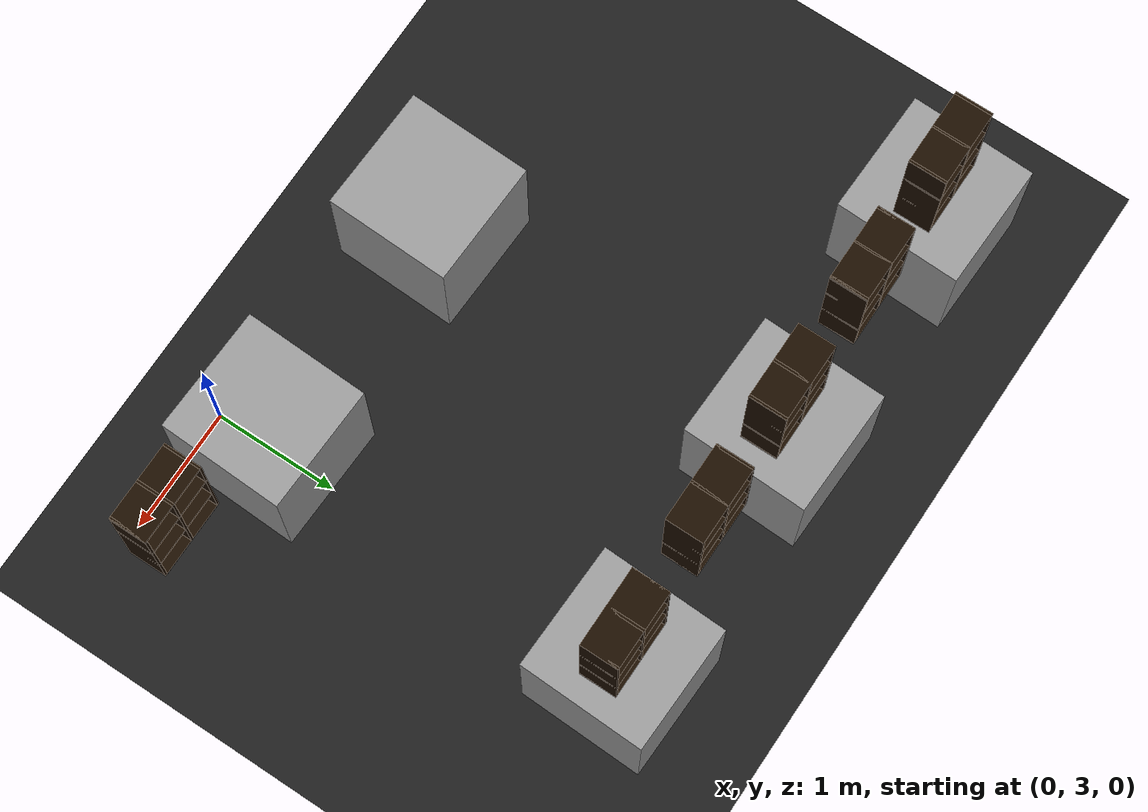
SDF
<sdf version="1.7">
 <world name="default">
  <model name="ground_plane">
   <static>1</static>
   <link name="link">
    <collision name="collision">
     <geometry><plane><normal>0 0 1</normal><size>100 100</size></plane></geometry>
     <surface><friction><ode><mu>100</mu><mu2>50</mu2></ode></friction></surface>
    </collision>
    <visual name="visual">
     <cast_shadows>0</cast_shadows>
     <geometry><plane><normal>0 0 1</normal><size>100 100</size></plane></geometry>
     <material>
      <script><uri>file://media/materials/scripts/gazebo.material</uri><name>Gazebo/BlackTransparent</name></script>
     </material>
    </visual>
   </link>
  </model>
  <model name="unit_box_4">
   <pose>-4.00808 6.51203 0.5 0 0 -0.029283</pose>
   <link name="link">
    <inertial>
     <mass>1</mass>
     <inertia>
      <ixx>0.166667</ixx>
      <ixy>0</ixy>
      <ixz>0</ixz>
      <iyy>0.166667</iyy>
      <iyz>0</iyz>
      <izz>0.166667</izz>
     </inertia>
    </inertial>
    <collision name="collision"><geometry><box><size>1 1 1</size></box></geometry></collision>
    <visual name="visual">
     <geometry><box><size>1 1 1</size></box></geometry>
     <material>
      <script><name>Gazebo/Grey</name><uri>file://media/materials/scripts/gazebo.material</uri></script>
     </material>
    </visual>
   </link>
  </model>
  <model name="unit_box_5">
   <pose>-2.00694 6.5157 0.5 -0 -0 -0.029544</pose>
   <link name="link">
    <inertial>
     <mass>1</mass>
     <inertia>
      <ixx>0.166667</ixx>
      <ixy>0</ixy>
      <ixz>0</ixz>
      <iyy>0.166667</iyy>
      <iyz>0</iyz>
      <izz>0.166667</izz>
     </inertia>
    </inertial>
    <collision name="collision"><geometry><box><size>1 1 1</size></box></geometry></collision>
    <visual name="visual">
     <geometry><box><size>1 1 1</size></box></geometry>
     <material>
      <script><name>Gazebo/Grey</name><uri>file://media/materials/scripts/gazebo.material</uri></script>
     </material>
    </visual>
   </link>
  </model>
  <model name="unit_box_6">
   <pose>-0.006437 6.49747 0.5 0 -0 -0.029591</pose>
   <link name="link">
    <inertial>
     <mass>1</mass>
     <inertia>
      <ixx>0.166667</ixx>
      <ixy>0</ixy>
      <ixz>0</ixz>
      <iyy>0.166667</iyy>
      <iyz>0</iyz>
      <izz>0.166667</izz>
     </inertia>
    </inertial>
    <collision name="collision"><geometry><box><size>1 1 1</size></box></geometry></collision>
    <visual name="visual">
     <geometry><box><size>1 1 1</size></box></geometry>
     <material>
      <script><name>Gazebo/Grey</name><uri>file://media/materials/scripts/gazebo.material</uri></script>
     </material>
    </visual>
   </link>
  </model>
  <model name="unit_box_11">
   <pose>-2.02761 3.50563 0.5 0 0 -0.031903</pose>
   <link name="link">
    <inertial>
     <mass>1</mass>
     <inertia>
      <ixx>0.166667</ixx>
      <ixy>0</ixy>
      <ixz>0</ixz>
      <iyy>0.166667</iyy>
      <iyz>0</iyz>
      <izz>0.166667</izz>
     </inertia>
    </inertial>
    <collision name="collision"><geometry><box><size>1 1 1</size></box></geometry></collision>
    <visual name="visual">
     <geometry><box><size>1 1 1</size></box></geometry>
     <material>
      <script><name>Gazebo/Grey</name><uri>file://media/materials/scripts/gazebo.material</uri></script>
     </material>
    </visual>
   </link>
  </model>
  <model name="unit_box_12">
   <pose>-0.025924 3.50002 0.5 0 0 -0.032047</pose>
   <link name="link">
    <inertial>
     <mass>1</mass>
     <inertia>
      <ixx>0.166667</ixx>
      <ixy>0</ixy>
      <ixz>0</ixz>
      <iyy>0.166667</iyy>
      <iyz>0</iyz>
      <izz>0.166667</izz>
     </inertia>
    </inertial>
    <collision name="collision"><geometry><box><size>1 1 1</size></box></geometry></collision>
    <visual name="visual">
     <geometry><box><size>1 1 1</size></box></geometry>
     <material>
      <script><name>Gazebo/Grey</name><uri>file://media/materials/scripts/gazebo.material</uri></script>
     </material>
    </visual>
   </link>
  </model>
  <model name="6_Cube_StorageE_clone_1">
   <link name="Wall_0">
    <pose>0 0 0.01 0 -0 0</pose>
    <inertial>
     <mass>1.6201</mass>
     <inertia><ixx>0.0119</ixx><iyy>0.0631</iyy><izz>0.0513</izz><ixy>0</ixy><ixz>0</ixz><iyz>0</iyz></inertia>
    </inertial>
    <collision name="Wall_0_Collision"><geometry><box><size>0.616 0.296 0.02</size></box></geometry></collision>
    <visual name="Wall_0_Visual">
     <geometry><box><size>0.616 0.296 0.02</size></box></geometry>
     <material>
      <script><uri>file://media/materials/scripts/gazebo.material</uri><name>Gazebo/Grey</name></script>
      <ambient>0.105882 0.0509804 0 1</ambient>
     </material>
    </visual>
   </link>
   <joint name="0_2" type="fixed">
    <pose>-0.308 0 0 0 -0 0</pose>
    <parent>Wall_2</parent>
    <child>Wall_0</child>
    <axis><xyz>1 0 0</xyz><limit><lower>-1e+16</lower><upper>1e+16</upper></limit></axis>
   </joint>
   <joint name="0_12" type="fixed">
    <parent>Wall_12</parent>
    <child>Wall_0</child>
    <axis><xyz>0 0 1</xyz><limit><lower>-1e+16</lower><upper>1e+16</upper></limit></axis>
   </joint>
   <joint name="0_4" type="fixed">
    <pose>0.308 0 0 0 -0 0</pose>
    <parent>Wall_4</parent>
    <child>Wall_0</child>
    <axis><xyz>1 0 0</xyz><limit><lower>-1e+16</lower><upper>1e+16</upper></limit></axis>
   </joint>
   <link name="Wall_10">
    <pose>0 0 0.61 0 -0 0</pose>
    <inertial>
     <mass>1.6201</mass>
     <inertia><ixx>0.0119</ixx><iyy>0.0631</iyy><izz>0.0513</izz><ixy>0</ixy><ixz>0</ixz><iyz>0</iyz></inertia>
    </inertial>
    <collision name="Wall_10_Collision"><geometry><box><size>0.616 0.296 0.02</size></box></geometry></collision>
    <visual name="Wall_10_Visual">
     <geometry><box><size>0.616 0.296 0.02</size></box></geometry>
     <material>
      <script><uri>file://media/materials/scripts/gazebo.material</uri><name>Gazebo/Grey</name></script>
      <ambient>0.105882 0.0509804 0 1</ambient>
     </material>
    </visual>
   </link>
   <joint name="10_2" type="fixed">
    <pose>-0.308 0 0 0 -0 0</pose>
    <parent>Wall_2</parent>
    <child>Wall_10</child>
    <axis><xyz>1 0 0</xyz><limit><lower>-1e+16</lower><upper>1e+16</upper></limit></axis>
   </joint>
   <joint name="10_12" type="fixed">
    <parent>Wall_12</parent>
    <child>Wall_10</child>
    <axis><xyz>0 0 1</xyz><limit><lower>-1e+16</lower><upper>1e+16</upper></limit></axis>
   </joint>
   <joint name="10_4" type="fixed">
    <pose>0.308 0 0 0 -0 0</pose>
    <parent>Wall_4</parent>
    <child>Wall_10</child>
    <axis><xyz>1 0 0</xyz><limit><lower>-1e+16</lower><upper>1e+16</upper></limit></axis>
   </joint>
   <link name="Wall_12">
    <pose>0 0 0.4575 0 -0 0</pose>
    <inertial>
     <mass>2.4065</mass>
     <inertia><ixx>0.0177</ixx><iyy>0.1855</iyy><izz>0.168</izz><ixy>0</ixy><ixz>0</ixz><iyz>0</iyz></inertia>
    </inertial>
    <collision name="Wall_12_Collision"><geometry><box><size>0.02 0.296 0.915</size></box></geometry></collision>
    <visual name="Wall_12_Visual">
     <geometry><box><size>0.02 0.296 0.915</size></box></geometry>
     <material>
      <script><uri>file://media/materials/scripts/gazebo.material</uri><name>Gazebo/Grey</name></script>
      <ambient>0.105882 0.0509804 0 1</ambient>
     </material>
    </visual>
   </link>
   <link name="Wall_2">
    <pose>-0.298 0 0.4575 0 -0 0</pose>
    <inertial>
     <mass>2.4065</mass>
     <inertia><ixx>0.0177</ixx><iyy>0.1855</iyy><izz>0.168</izz><ixy>0</ixy><ixz>0</ixz><iyz>0</iyz></inertia>
    </inertial>
    <collision name="Wall_2_Collision"><geometry><box><size>0.02 0.296 0.915</size></box></geometry></collision>
    <visual name="Wall_2_Visual">
     <geometry><box><size>0.02 0.296 0.915</size></box></geometry>
     <material>
      <script><uri>file://media/materials/scripts/gazebo.material</uri><name>Gazebo/Grey</name></script>
      <ambient>0.105882 0.0509804 0 1</ambient>
     </material>
    </visual>
   </link>
   <link name="Wall_4">
    <pose>0.298 0 0.4575 0 -0 0</pose>
    <inertial>
     <mass>2.4065</mass>
     <inertia><ixx>0.0177</ixx><iyy>0.1855</iyy><izz>0.168</izz><ixy>0</ixy><ixz>0</ixz><iyz>0</iyz></inertia>
    </inertial>
    <collision name="Wall_4_Collision"><geometry><box><size>0.02 0.296 0.915</size></box></geometry></collision>
    <visual name="Wall_4_Visual">
     <geometry><box><size>0.02 0.296 0.915</size></box></geometry>
     <material>
      <script><uri>file://media/materials/scripts/gazebo.material</uri><name>Gazebo/Grey</name></script>
      <ambient>0.105882 0.0509804 0 1</ambient>
     </material>
    </visual>
   </link>
   <link name="Wall_6">
    <pose>0 0 0.905 0 -0 0</pose>
    <inertial>
     <mass>1.6201</mass>
     <inertia><ixx>0.0119</ixx><iyy>0.0631</iyy><izz>0.0513</izz><ixy>0</ixy><ixz>0</ixz><iyz>0</iyz></inertia>
    </inertial>
    <collision name="Wall_6_Collision"><geometry><box><size>0.616 0.296 0.02</size></box></geometry></collision>
    <visual name="Wall_6_Visual">
     <geometry><box><size>0.616 0.296 0.02</size></box></geometry>
     <material>
      <script><uri>file://media/materials/scripts/gazebo.material</uri><name>Gazebo/Grey</name></script>
      <ambient>0.105882 0.0509804 0 1</ambient>
     </material>
    </visual>
   </link>
   <joint name="6_2" type="fixed">
    <pose>-0.308 0 0 0 -0 0</pose>
    <parent>Wall_2</parent>
    <child>Wall_6</child>
    <axis><xyz>2 0 0</xyz><limit><lower>-1e+16</lower><upper>1e+16</upper></limit></axis>
   </joint>
   <joint name="6_12" type="fixed">
    <parent>Wall_12</parent>
    <child>Wall_6</child>
    <axis><xyz>0 0 1</xyz><limit><lower>-1e+16</lower><upper>1e+16</upper></limit></axis>
   </joint>
   <joint name="6_4" type="fixed">
    <pose>0.308 0 0 0 -0 0</pose>
    <parent>Wall_4</parent>
    <child>Wall_6</child>
    <axis><xyz>1 0 0</xyz><limit><lower>-1e+16</lower><upper>1e+16</upper></limit></axis>
   </joint>
   <link name="Wall_8">
    <pose>0 0 0.305 0 -0 0</pose>
    <inertial>
     <mass>1.6201</mass>
     <inertia><ixx>0.0119</ixx><iyy>0.0631</iyy><izz>0.0513</izz><ixy>0</ixy><ixz>0</ixz><iyz>0</iyz></inertia>
    </inertial>
    <collision name="Wall_8_Collision"><geometry><box><size>0.616 0.296 0.02</size></box></geometry></collision>
    <visual name="Wall_8_Visual">
     <geometry><box><size>0.616 0.296 0.02</size></box></geometry>
     <material>
      <script><uri>file://media/materials/scripts/gazebo.material</uri><name>Gazebo/Grey</name></script>
      <ambient>0.105882 0.0509804 0 1</ambient>
     </material>
    </visual>
   </link>
   <joint name="8_2" type="fixed">
    <pose>-0.308 0 0 0 -0 0</pose>
    <parent>Wall_2</parent>
    <child>Wall_8</child>
    <axis><xyz>1 0 0</xyz><limit><lower>-1e+16</lower><upper>1e+16</upper></limit></axis>
   </joint>
   <joint name="8_12" type="fixed">
    <parent>Wall_12</parent>
    <child>Wall_8</child>
    <axis><xyz>0 0 1</xyz><limit><lower>-1e+16</lower><upper>1e+16</upper></limit></axis>
   </joint>
   <joint name="8_4" type="fixed">
    <pose>0.308 0 0 0 -0 0</pose>
    <parent>Wall_4</parent>
    <child>Wall_8</child>
    <axis><xyz>1 0 0</xyz><limit><lower>-1e+16</lower><upper>1e+16</upper></limit></axis>
   </joint>
   <static>1</static>
   <pose>-4 6.5 1.01 0 -0 0</pose>
  </model>
  <model name="6_Cube_StorageE_clone_3">
   <link name="Wall_0">
    <pose>0 0 0.01 0 -0 0</pose>
    <inertial>
     <mass>1.6201</mass>
     <inertia><ixx>0.0119</ixx><iyy>0.0631</iyy><izz>0.0513</izz><ixy>0</ixy><ixz>0</ixz><iyz>0</iyz></inertia>
    </inertial>
    <collision name="Wall_0_Collision"><geometry><box><size>0.616 0.296 0.02</size></box></geometry></collision>
    <visual name="Wall_0_Visual">
     <geometry><box><size>0.616 0.296 0.02</size></box></geometry>
     <material>
      <script><uri>file://media/materials/scripts/gazebo.material</uri><name>Gazebo/Grey</name></script>
      <ambient>0.105882 0.0509804 0 1</ambient>
     </material>
    </visual>
   </link>
   <joint name="0_2" type="fixed">
    <pose>-0.308 0 0 0 -0 0</pose>
    <parent>Wall_2</parent>
    <child>Wall_0</child>
    <axis><xyz>1 0 0</xyz><limit><lower>-1e+16</lower><upper>1e+16</upper></limit></axis>
   </joint>
   <joint name="0_12" type="fixed">
    <parent>Wall_12</parent>
    <child>Wall_0</child>
    <axis><xyz>0 0 1</xyz><limit><lower>-1e+16</lower><upper>1e+16</upper></limit></axis>
   </joint>
   <joint name="0_4" type="fixed">
    <pose>0.308 0 0 0 -0 0</pose>
    <parent>Wall_4</parent>
    <child>Wall_0</child>
    <axis><xyz>1 0 0</xyz><limit><lower>-1e+16</lower><upper>1e+16</upper></limit></axis>
   </joint>
   <link name="Wall_10">
    <pose>0 0 0.61 0 -0 0</pose>
    <inertial>
     <mass>1.6201</mass>
     <inertia><ixx>0.0119</ixx><iyy>0.0631</iyy><izz>0.0513</izz><ixy>0</ixy><ixz>0</ixz><iyz>0</iyz></inertia>
    </inertial>
    <collision name="Wall_10_Collision"><geometry><box><size>0.616 0.296 0.02</size></box></geometry></collision>
    <visual name="Wall_10_Visual">
     <geometry><box><size>0.616 0.296 0.02</size></box></geometry>
     <material>
      <script><uri>file://media/materials/scripts/gazebo.material</uri><name>Gazebo/Grey</name></script>
      <ambient>0.105882 0.0509804 0 1</ambient>
     </material>
    </visual>
   </link>
   <joint name="10_2" type="fixed">
    <pose>-0.308 0 0 0 -0 0</pose>
    <parent>Wall_2</parent>
    <child>Wall_10</child>
    <axis><xyz>1 0 0</xyz><limit><lower>-1e+16</lower><upper>1e+16</upper></limit></axis>
   </joint>
   <joint name="10_12" type="fixed">
    <parent>Wall_12</parent>
    <child>Wall_10</child>
    <axis><xyz>0 0 1</xyz><limit><lower>-1e+16</lower><upper>1e+16</upper></limit></axis>
   </joint>
   <joint name="10_4" type="fixed">
    <pose>0.308 0 0 0 -0 0</pose>
    <parent>Wall_4</parent>
    <child>Wall_10</child>
    <axis><xyz>1 0 0</xyz><limit><lower>-1e+16</lower><upper>1e+16</upper></limit></axis>
   </joint>
   <link name="Wall_12">
    <pose>0 0 0.4575 0 -0 0</pose>
    <inertial>
     <mass>2.4065</mass>
     <inertia><ixx>0.0177</ixx><iyy>0.1855</iyy><izz>0.168</izz><ixy>0</ixy><ixz>0</ixz><iyz>0</iyz></inertia>
    </inertial>
    <collision name="Wall_12_Collision"><geometry><box><size>0.02 0.296 0.915</size></box></geometry></collision>
    <visual name="Wall_12_Visual">
     <geometry><box><size>0.02 0.296 0.915</size></box></geometry>
     <material>
      <script><uri>file://media/materials/scripts/gazebo.material</uri><name>Gazebo/Grey</name></script>
      <ambient>0.105882 0.0509804 0 1</ambient>
     </material>
    </visual>
   </link>
   <link name="Wall_2">
    <pose>-0.298 0 0.4575 0 -0 0</pose>
    <inertial>
     <mass>2.4065</mass>
     <inertia><ixx>0.0177</ixx><iyy>0.1855</iyy><izz>0.168</izz><ixy>0</ixy><ixz>0</ixz><iyz>0</iyz></inertia>
    </inertial>
    <collision name="Wall_2_Collision"><geometry><box><size>0.02 0.296 0.915</size></box></geometry></collision>
    <visual name="Wall_2_Visual">
     <geometry><box><size>0.02 0.296 0.915</size></box></geometry>
     <material>
      <script><uri>file://media/materials/scripts/gazebo.material</uri><name>Gazebo/Grey</name></script>
      <ambient>0.105882 0.0509804 0 1</ambient>
     </material>
    </visual>
   </link>
   <link name="Wall_4">
    <pose>0.298 0 0.4575 0 -0 0</pose>
    <inertial>
     <mass>2.4065</mass>
     <inertia><ixx>0.0177</ixx><iyy>0.1855</iyy><izz>0.168</izz><ixy>0</ixy><ixz>0</ixz><iyz>0</iyz></inertia>
    </inertial>
    <collision name="Wall_4_Collision"><geometry><box><size>0.02 0.296 0.915</size></box></geometry></collision>
    <visual name="Wall_4_Visual">
     <geometry><box><size>0.02 0.296 0.915</size></box></geometry>
     <material>
      <script><uri>file://media/materials/scripts/gazebo.material</uri><name>Gazebo/Grey</name></script>
      <ambient>0.105882 0.0509804 0 1</ambient>
     </material>
    </visual>
   </link>
   <link name="Wall_6">
    <pose>0 0 0.905 0 -0 0</pose>
    <inertial>
     <mass>1.6201</mass>
     <inertia><ixx>0.0119</ixx><iyy>0.0631</iyy><izz>0.0513</izz><ixy>0</ixy><ixz>0</ixz><iyz>0</iyz></inertia>
    </inertial>
    <collision name="Wall_6_Collision"><geometry><box><size>0.616 0.296 0.02</size></box></geometry></collision>
    <visual name="Wall_6_Visual">
     <geometry><box><size>0.616 0.296 0.02</size></box></geometry>
     <material>
      <script><uri>file://media/materials/scripts/gazebo.material</uri><name>Gazebo/Grey</name></script>
      <ambient>0.105882 0.0509804 0 1</ambient>
     </material>
    </visual>
   </link>
   <joint name="6_2" type="fixed">
    <pose>-0.308 0 0 0 -0 0</pose>
    <parent>Wall_2</parent>
    <child>Wall_6</child>
    <axis><xyz>2 0 0</xyz><limit><lower>-1e+16</lower><upper>1e+16</upper></limit></axis>
   </joint>
   <joint name="6_12" type="fixed">
    <parent>Wall_12</parent>
    <child>Wall_6</child>
    <axis><xyz>0 0 1</xyz><limit><lower>-1e+16</lower><upper>1e+16</upper></limit></axis>
   </joint>
   <joint name="6_4" type="fixed">
    <pose>0.308 0 0 0 -0 0</pose>
    <parent>Wall_4</parent>
    <child>Wall_6</child>
    <axis><xyz>1 0 0</xyz><limit><lower>-1e+16</lower><upper>1e+16</upper></limit></axis>
   </joint>
   <link name="Wall_8">
    <pose>0 0 0.305 0 -0 0</pose>
    <inertial>
     <mass>1.6201</mass>
     <inertia><ixx>0.0119</ixx><iyy>0.0631</iyy><izz>0.0513</izz><ixy>0</ixy><ixz>0</ixz><iyz>0</iyz></inertia>
    </inertial>
    <collision name="Wall_8_Collision"><geometry><box><size>0.616 0.296 0.02</size></box></geometry></collision>
    <visual name="Wall_8_Visual">
     <geometry><box><size>0.616 0.296 0.02</size></box></geometry>
     <material>
      <script><uri>file://media/materials/scripts/gazebo.material</uri><name>Gazebo/Grey</name></script>
      <ambient>0.105882 0.0509804 0 1</ambient>
     </material>
    </visual>
   </link>
   <joint name="8_2" type="fixed">
    <pose>-0.308 0 0 0 -0 0</pose>
    <parent>Wall_2</parent>
    <child>Wall_8</child>
    <axis><xyz>1 0 0</xyz><limit><lower>-1e+16</lower><upper>1e+16</upper></limit></axis>
   </joint>
   <joint name="8_12" type="fixed">
    <parent>Wall_12</parent>
    <child>Wall_8</child>
    <axis><xyz>0 0 1</xyz><limit><lower>-1e+16</lower><upper>1e+16</upper></limit></axis>
   </joint>
   <joint name="8_4" type="fixed">
    <pose>0.308 0 0 0 -0 0</pose>
    <parent>Wall_4</parent>
    <child>Wall_8</child>
    <axis><xyz>1 0 0</xyz><limit><lower>-1e+16</lower><upper>1e+16</upper></limit></axis>
   </joint>
   <static>1</static>
   <pose>-3 6.5 1.01 0 -0 0</pose>
  </model>
  <model name="6_Cube_StorageE_clone_4">
   <link name="Wall_0">
    <pose>0 0 0.01 0 -0 0</pose>
    <inertial>
     <mass>1.6201</mass>
     <inertia><ixx>0.0119</ixx><iyy>0.0631</iyy><izz>0.0513</izz><ixy>0</ixy><ixz>0</ixz><iyz>0</iyz></inertia>
    </inertial>
    <collision name="Wall_0_Collision"><geometry><box><size>0.616 0.296 0.02</size></box></geometry></collision>
    <visual name="Wall_0_Visual">
     <geometry><box><size>0.616 0.296 0.02</size></box></geometry>
     <material>
      <script><uri>file://media/materials/scripts/gazebo.material</uri><name>Gazebo/Grey</name></script>
      <ambient>0.105882 0.0509804 0 1</ambient>
     </material>
    </visual>
   </link>
   <joint name="0_2" type="fixed">
    <pose>-0.308 0 0 0 -0 0</pose>
    <parent>Wall_2</parent>
    <child>Wall_0</child>
    <axis><xyz>1 0 0</xyz><limit><lower>-1e+16</lower><upper>1e+16</upper></limit></axis>
   </joint>
   <joint name="0_12" type="fixed">
    <parent>Wall_12</parent>
    <child>Wall_0</child>
    <axis><xyz>0 0 1</xyz><limit><lower>-1e+16</lower><upper>1e+16</upper></limit></axis>
   </joint>
   <joint name="0_4" type="fixed">
    <pose>0.308 0 0 0 -0 0</pose>
    <parent>Wall_4</parent>
    <child>Wall_0</child>
    <axis><xyz>1 0 0</xyz><limit><lower>-1e+16</lower><upper>1e+16</upper></limit></axis>
   </joint>
   <link name="Wall_10">
    <pose>0 0 0.61 0 -0 0</pose>
    <inertial>
     <mass>1.6201</mass>
     <inertia><ixx>0.0119</ixx><iyy>0.0631</iyy><izz>0.0513</izz><ixy>0</ixy><ixz>0</ixz><iyz>0</iyz></inertia>
    </inertial>
    <collision name="Wall_10_Collision"><geometry><box><size>0.616 0.296 0.02</size></box></geometry></collision>
    <visual name="Wall_10_Visual">
     <geometry><box><size>0.616 0.296 0.02</size></box></geometry>
     <material>
      <script><uri>file://media/materials/scripts/gazebo.material</uri><name>Gazebo/Grey</name></script>
      <ambient>0.105882 0.0509804 0 1</ambient>
     </material>
    </visual>
   </link>
   <joint name="10_2" type="fixed">
    <pose>-0.308 0 0 0 -0 0</pose>
    <parent>Wall_2</parent>
    <child>Wall_10</child>
    <axis><xyz>1 0 0</xyz><limit><lower>-1e+16</lower><upper>1e+16</upper></limit></axis>
   </joint>
   <joint name="10_12" type="fixed">
    <parent>Wall_12</parent>
    <child>Wall_10</child>
    <axis><xyz>0 0 1</xyz><limit><lower>-1e+16</lower><upper>1e+16</upper></limit></axis>
   </joint>
   <joint name="10_4" type="fixed">
    <pose>0.308 0 0 0 -0 0</pose>
    <parent>Wall_4</parent>
    <child>Wall_10</child>
    <axis><xyz>1 0 0</xyz><limit><lower>-1e+16</lower><upper>1e+16</upper></limit></axis>
   </joint>
   <link name="Wall_12">
    <pose>0 0 0.4575 0 -0 0</pose>
    <inertial>
     <mass>2.4065</mass>
     <inertia><ixx>0.0177</ixx><iyy>0.1855</iyy><izz>0.168</izz><ixy>0</ixy><ixz>0</ixz><iyz>0</iyz></inertia>
    </inertial>
    <collision name="Wall_12_Collision"><geometry><box><size>0.02 0.296 0.915</size></box></geometry></collision>
    <visual name="Wall_12_Visual">
     <geometry><box><size>0.02 0.296 0.915</size></box></geometry>
     <material>
      <script><uri>file://media/materials/scripts/gazebo.material</uri><name>Gazebo/Grey</name></script>
      <ambient>0.105882 0.0509804 0 1</ambient>
     </material>
    </visual>
   </link>
   <link name="Wall_2">
    <pose>-0.298 0 0.4575 0 -0 0</pose>
    <inertial>
     <mass>2.4065</mass>
     <inertia><ixx>0.0177</ixx><iyy>0.1855</iyy><izz>0.168</izz><ixy>0</ixy><ixz>0</ixz><iyz>0</iyz></inertia>
    </inertial>
    <collision name="Wall_2_Collision"><geometry><box><size>0.02 0.296 0.915</size></box></geometry></collision>
    <visual name="Wall_2_Visual">
     <geometry><box><size>0.02 0.296 0.915</size></box></geometry>
     <material>
      <script><uri>file://media/materials/scripts/gazebo.material</uri><name>Gazebo/Grey</name></script>
      <ambient>0.105882 0.0509804 0 1</ambient>
     </material>
    </visual>
   </link>
   <link name="Wall_4">
    <pose>0.298 0 0.4575 0 -0 0</pose>
    <inertial>
     <mass>2.4065</mass>
     <inertia><ixx>0.0177</ixx><iyy>0.1855</iyy><izz>0.168</izz><ixy>0</ixy><ixz>0</ixz><iyz>0</iyz></inertia>
    </inertial>
    <collision name="Wall_4_Collision"><geometry><box><size>0.02 0.296 0.915</size></box></geometry></collision>
    <visual name="Wall_4_Visual">
     <geometry><box><size>0.02 0.296 0.915</size></box></geometry>
     <material>
      <script><uri>file://media/materials/scripts/gazebo.material</uri><name>Gazebo/Grey</name></script>
      <ambient>0.105882 0.0509804 0 1</ambient>
     </material>
    </visual>
   </link>
   <link name="Wall_6">
    <pose>0 0 0.905 0 -0 0</pose>
    <inertial>
     <mass>1.6201</mass>
     <inertia><ixx>0.0119</ixx><iyy>0.0631</iyy><izz>0.0513</izz><ixy>0</ixy><ixz>0</ixz><iyz>0</iyz></inertia>
    </inertial>
    <collision name="Wall_6_Collision"><geometry><box><size>0.616 0.296 0.02</size></box></geometry></collision>
    <visual name="Wall_6_Visual">
     <geometry><box><size>0.616 0.296 0.02</size></box></geometry>
     <material>
      <script><uri>file://media/materials/scripts/gazebo.material</uri><name>Gazebo/Grey</name></script>
      <ambient>0.105882 0.0509804 0 1</ambient>
     </material>
    </visual>
   </link>
   <joint name="6_2" type="fixed">
    <pose>-0.308 0 0 0 -0 0</pose>
    <parent>Wall_2</parent>
    <child>Wall_6</child>
    <axis><xyz>2 0 0</xyz><limit><lower>-1e+16</lower><upper>1e+16</upper></limit></axis>
   </joint>
   <joint name="6_12" type="fixed">
    <parent>Wall_12</parent>
    <child>Wall_6</child>
    <axis><xyz>0 0 1</xyz><limit><lower>-1e+16</lower><upper>1e+16</upper></limit></axis>
   </joint>
   <joint name="6_4" type="fixed">
    <pose>0.308 0 0 0 -0 0</pose>
    <parent>Wall_4</parent>
    <child>Wall_6</child>
    <axis><xyz>1 0 0</xyz><limit><lower>-1e+16</lower><upper>1e+16</upper></limit></axis>
   </joint>
   <link name="Wall_8">
    <pose>0 0 0.305 0 -0 0</pose>
    <inertial>
     <mass>1.6201</mass>
     <inertia><ixx>0.0119</ixx><iyy>0.0631</iyy><izz>0.0513</izz><ixy>0</ixy><ixz>0</ixz><iyz>0</iyz></inertia>
    </inertial>
    <collision name="Wall_8_Collision"><geometry><box><size>0.616 0.296 0.02</size></box></geometry></collision>
    <visual name="Wall_8_Visual">
     <geometry><box><size>0.616 0.296 0.02</size></box></geometry>
     <material>
      <script><uri>file://media/materials/scripts/gazebo.material</uri><name>Gazebo/Grey</name></script>
      <ambient>0.105882 0.0509804 0 1</ambient>
     </material>
    </visual>
   </link>
   <joint name="8_2" type="fixed">
    <pose>-0.308 0 0 0 -0 0</pose>
    <parent>Wall_2</parent>
    <child>Wall_8</child>
    <axis><xyz>1 0 0</xyz><limit><lower>-1e+16</lower><upper>1e+16</upper></limit></axis>
   </joint>
   <joint name="8_12" type="fixed">
    <parent>Wall_12</parent>
    <child>Wall_8</child>
    <axis><xyz>0 0 1</xyz><limit><lower>-1e+16</lower><upper>1e+16</upper></limit></axis>
   </joint>
   <joint name="8_4" type="fixed">
    <pose>0.308 0 0 0 -0 0</pose>
    <parent>Wall_4</parent>
    <child>Wall_8</child>
    <axis><xyz>1 0 0</xyz><limit><lower>-1e+16</lower><upper>1e+16</upper></limit></axis>
   </joint>
   <static>1</static>
   <pose>-2 6.5 1.01 0 -0 0</pose>
  </model>
  <model name="6_Cube_StorageE_clone_5">
   <link name="Wall_0">
    <pose>0 0 0.01 0 -0 0</pose>
    <inertial>
     <mass>1.6201</mass>
     <inertia><ixx>0.0119</ixx><iyy>0.0631</iyy><izz>0.0513</izz><ixy>0</ixy><ixz>0</ixz><iyz>0</iyz></inertia>
    </inertial>
    <collision name="Wall_0_Collision"><geometry><box><size>0.616 0.296 0.02</size></box></geometry></collision>
    <visual name="Wall_0_Visual">
     <geometry><box><size>0.616 0.296 0.02</size></box></geometry>
     <material>
      <script><uri>file://media/materials/scripts/gazebo.material</uri><name>Gazebo/Grey</name></script>
      <ambient>0.105882 0.0509804 0 1</ambient>
     </material>
    </visual>
   </link>
   <joint name="0_2" type="fixed">
    <pose>-0.308 0 0 0 -0 0</pose>
    <parent>Wall_2</parent>
    <child>Wall_0</child>
    <axis><xyz>1 0 0</xyz><limit><lower>-1e+16</lower><upper>1e+16</upper></limit></axis>
   </joint>
   <joint name="0_12" type="fixed">
    <parent>Wall_12</parent>
    <child>Wall_0</child>
    <axis><xyz>0 0 1</xyz><limit><lower>-1e+16</lower><upper>1e+16</upper></limit></axis>
   </joint>
   <joint name="0_4" type="fixed">
    <pose>0.308 0 0 0 -0 0</pose>
    <parent>Wall_4</parent>
    <child>Wall_0</child>
    <axis><xyz>1 0 0</xyz><limit><lower>-1e+16</lower><upper>1e+16</upper></limit></axis>
   </joint>
   <link name="Wall_10">
    <pose>0 0 0.61 0 -0 0</pose>
    <inertial>
     <mass>1.6201</mass>
     <inertia><ixx>0.0119</ixx><iyy>0.0631</iyy><izz>0.0513</izz><ixy>0</ixy><ixz>0</ixz><iyz>0</iyz></inertia>
    </inertial>
    <collision name="Wall_10_Collision"><geometry><box><size>0.616 0.296 0.02</size></box></geometry></collision>
    <visual name="Wall_10_Visual">
     <geometry><box><size>0.616 0.296 0.02</size></box></geometry>
     <material>
      <script><uri>file://media/materials/scripts/gazebo.material</uri><name>Gazebo/Grey</name></script>
      <ambient>0.105882 0.0509804 0 1</ambient>
     </material>
    </visual>
   </link>
   <joint name="10_2" type="fixed">
    <pose>-0.308 0 0 0 -0 0</pose>
    <parent>Wall_2</parent>
    <child>Wall_10</child>
    <axis><xyz>1 0 0</xyz><limit><lower>-1e+16</lower><upper>1e+16</upper></limit></axis>
   </joint>
   <joint name="10_12" type="fixed">
    <parent>Wall_12</parent>
    <child>Wall_10</child>
    <axis><xyz>0 0 1</xyz><limit><lower>-1e+16</lower><upper>1e+16</upper></limit></axis>
   </joint>
   <joint name="10_4" type="fixed">
    <pose>0.308 0 0 0 -0 0</pose>
    <parent>Wall_4</parent>
    <child>Wall_10</child>
    <axis><xyz>1 0 0</xyz><limit><lower>-1e+16</lower><upper>1e+16</upper></limit></axis>
   </joint>
   <link name="Wall_12">
    <pose>0 0 0.4575 0 -0 0</pose>
    <inertial>
     <mass>2.4065</mass>
     <inertia><ixx>0.0177</ixx><iyy>0.1855</iyy><izz>0.168</izz><ixy>0</ixy><ixz>0</ixz><iyz>0</iyz></inertia>
    </inertial>
    <collision name="Wall_12_Collision"><geometry><box><size>0.02 0.296 0.915</size></box></geometry></collision>
    <visual name="Wall_12_Visual">
     <geometry><box><size>0.02 0.296 0.915</size></box></geometry>
     <material>
      <script><uri>file://media/materials/scripts/gazebo.material</uri><name>Gazebo/Grey</name></script>
      <ambient>0.105882 0.0509804 0 1</ambient>
     </material>
    </visual>
   </link>
   <link name="Wall_2">
    <pose>-0.298 0 0.4575 0 -0 0</pose>
    <inertial>
     <mass>2.4065</mass>
     <inertia><ixx>0.0177</ixx><iyy>0.1855</iyy><izz>0.168</izz><ixy>0</ixy><ixz>0</ixz><iyz>0</iyz></inertia>
    </inertial>
    <collision name="Wall_2_Collision"><geometry><box><size>0.02 0.296 0.915</size></box></geometry></collision>
    <visual name="Wall_2_Visual">
     <geometry><box><size>0.02 0.296 0.915</size></box></geometry>
     <material>
      <script><uri>file://media/materials/scripts/gazebo.material</uri><name>Gazebo/Grey</name></script>
      <ambient>0.105882 0.0509804 0 1</ambient>
     </material>
    </visual>
   </link>
   <link name="Wall_4">
    <pose>0.298 0 0.4575 0 -0 0</pose>
    <inertial>
     <mass>2.4065</mass>
     <inertia><ixx>0.0177</ixx><iyy>0.1855</iyy><izz>0.168</izz><ixy>0</ixy><ixz>0</ixz><iyz>0</iyz></inertia>
    </inertial>
    <collision name="Wall_4_Collision"><geometry><box><size>0.02 0.296 0.915</size></box></geometry></collision>
    <visual name="Wall_4_Visual">
     <geometry><box><size>0.02 0.296 0.915</size></box></geometry>
     <material>
      <script><uri>file://media/materials/scripts/gazebo.material</uri><name>Gazebo/Grey</name></script>
      <ambient>0.105882 0.0509804 0 1</ambient>
     </material>
    </visual>
   </link>
   <link name="Wall_6">
    <pose>0 0 0.905 0 -0 0</pose>
    <inertial>
     <mass>1.6201</mass>
     <inertia><ixx>0.0119</ixx><iyy>0.0631</iyy><izz>0.0513</izz><ixy>0</ixy><ixz>0</ixz><iyz>0</iyz></inertia>
    </inertial>
    <collision name="Wall_6_Collision"><geometry><box><size>0.616 0.296 0.02</size></box></geometry></collision>
    <visual name="Wall_6_Visual">
     <geometry><box><size>0.616 0.296 0.02</size></box></geometry>
     <material>
      <script><uri>file://media/materials/scripts/gazebo.material</uri><name>Gazebo/Grey</name></script>
      <ambient>0.105882 0.0509804 0 1</ambient>
     </material>
    </visual>
   </link>
   <joint name="6_2" type="fixed">
    <pose>-0.308 0 0 0 -0 0</pose>
    <parent>Wall_2</parent>
    <child>Wall_6</child>
    <axis><xyz>2 0 0</xyz><limit><lower>-1e+16</lower><upper>1e+16</upper></limit></axis>
   </joint>
   <joint name="6_12" type="fixed">
    <parent>Wall_12</parent>
    <child>Wall_6</child>
    <axis><xyz>0 0 1</xyz><limit><lower>-1e+16</lower><upper>1e+16</upper></limit></axis>
   </joint>
   <joint name="6_4" type="fixed">
    <pose>0.308 0 0 0 -0 0</pose>
    <parent>Wall_4</parent>
    <child>Wall_6</child>
    <axis><xyz>1 0 0</xyz><limit><lower>-1e+16</lower><upper>1e+16</upper></limit></axis>
   </joint>
   <link name="Wall_8">
    <pose>0 0 0.305 0 -0 0</pose>
    <inertial>
     <mass>1.6201</mass>
     <inertia><ixx>0.0119</ixx><iyy>0.0631</iyy><izz>0.0513</izz><ixy>0</ixy><ixz>0</ixz><iyz>0</iyz></inertia>
    </inertial>
    <collision name="Wall_8_Collision"><geometry><box><size>0.616 0.296 0.02</size></box></geometry></collision>
    <visual name="Wall_8_Visual">
     <geometry><box><size>0.616 0.296 0.02</size></box></geometry>
     <material>
      <script><uri>file://media/materials/scripts/gazebo.material</uri><name>Gazebo/Grey</name></script>
      <ambient>0.105882 0.0509804 0 1</ambient>
     </material>
    </visual>
   </link>
   <joint name="8_2" type="fixed">
    <pose>-0.308 0 0 0 -0 0</pose>
    <parent>Wall_2</parent>
    <child>Wall_8</child>
    <axis><xyz>1 0 0</xyz><limit><lower>-1e+16</lower><upper>1e+16</upper></limit></axis>
   </joint>
   <joint name="8_12" type="fixed">
    <parent>Wall_12</parent>
    <child>Wall_8</child>
    <axis><xyz>0 0 1</xyz><limit><lower>-1e+16</lower><upper>1e+16</upper></limit></axis>
   </joint>
   <joint name="8_4" type="fixed">
    <pose>0.308 0 0 0 -0 0</pose>
    <parent>Wall_4</parent>
    <child>Wall_8</child>
    <axis><xyz>1 0 0</xyz><limit><lower>-1e+16</lower><upper>1e+16</upper></limit></axis>
   </joint>
   <static>1</static>
   <pose>-1 6.5 1.01 0 -0 0</pose>
  </model>
  <model name="6_Cube_StorageE_clone_6">
   <link name="Wall_0">
    <pose>0 0 0.01 0 -0 0</pose>
    <inertial>
     <mass>1.6201</mass>
     <inertia><ixx>0.0119</ixx><iyy>0.0631</iyy><izz>0.0513</izz><ixy>0</ixy><ixz>0</ixz><iyz>0</iyz></inertia>
    </inertial>
    <collision name="Wall_0_Collision"><geometry><box><size>0.616 0.296 0.02</size></box></geometry></collision>
    <visual name="Wall_0_Visual">
     <geometry><box><size>0.616 0.296 0.02</size></box></geometry>
     <material>
      <script><uri>file://media/materials/scripts/gazebo.material</uri><name>Gazebo/Grey</name></script>
      <ambient>0.105882 0.0509804 0 1</ambient>
     </material>
    </visual>
   </link>
   <joint name="0_2" type="fixed">
    <pose>-0.308 0 0 0 -0 0</pose>
    <parent>Wall_2</parent>
    <child>Wall_0</child>
    <axis><xyz>1 0 0</xyz><limit><lower>-1e+16</lower><upper>1e+16</upper></limit></axis>
   </joint>
   <joint name="0_12" type="fixed">
    <parent>Wall_12</parent>
    <child>Wall_0</child>
    <axis><xyz>0 0 1</xyz><limit><lower>-1e+16</lower><upper>1e+16</upper></limit></axis>
   </joint>
   <joint name="0_4" type="fixed">
    <pose>0.308 0 0 0 -0 0</pose>
    <parent>Wall_4</parent>
    <child>Wall_0</child>
    <axis><xyz>1 0 0</xyz><limit><lower>-1e+16</lower><upper>1e+16</upper></limit></axis>
   </joint>
   <link name="Wall_10">
    <pose>0 0 0.61 0 -0 0</pose>
    <inertial>
     <mass>1.6201</mass>
     <inertia><ixx>0.0119</ixx><iyy>0.0631</iyy><izz>0.0513</izz><ixy>0</ixy><ixz>0</ixz><iyz>0</iyz></inertia>
    </inertial>
    <collision name="Wall_10_Collision"><geometry><box><size>0.616 0.296 0.02</size></box></geometry></collision>
    <visual name="Wall_10_Visual">
     <geometry><box><size>0.616 0.296 0.02</size></box></geometry>
     <material>
      <script><uri>file://media/materials/scripts/gazebo.material</uri><name>Gazebo/Grey</name></script>
      <ambient>0.105882 0.0509804 0 1</ambient>
     </material>
    </visual>
   </link>
   <joint name="10_2" type="fixed">
    <pose>-0.308 0 0 0 -0 0</pose>
    <parent>Wall_2</parent>
    <child>Wall_10</child>
    <axis><xyz>1 0 0</xyz><limit><lower>-1e+16</lower><upper>1e+16</upper></limit></axis>
   </joint>
   <joint name="10_12" type="fixed">
    <parent>Wall_12</parent>
    <child>Wall_10</child>
    <axis><xyz>0 0 1</xyz><limit><lower>-1e+16</lower><upper>1e+16</upper></limit></axis>
   </joint>
   <joint name="10_4" type="fixed">
    <pose>0.308 0 0 0 -0 0</pose>
    <parent>Wall_4</parent>
    <child>Wall_10</child>
    <axis><xyz>1 0 0</xyz><limit><lower>-1e+16</lower><upper>1e+16</upper></limit></axis>
   </joint>
   <link name="Wall_12">
    <pose>0 0 0.4575 0 -0 0</pose>
    <inertial>
     <mass>2.4065</mass>
     <inertia><ixx>0.0177</ixx><iyy>0.1855</iyy><izz>0.168</izz><ixy>0</ixy><ixz>0</ixz><iyz>0</iyz></inertia>
    </inertial>
    <collision name="Wall_12_Collision"><geometry><box><size>0.02 0.296 0.915</size></box></geometry></collision>
    <visual name="Wall_12_Visual">
     <geometry><box><size>0.02 0.296 0.915</size></box></geometry>
     <material>
      <script><uri>file://media/materials/scripts/gazebo.material</uri><name>Gazebo/Grey</name></script>
      <ambient>0.105882 0.0509804 0 1</ambient>
     </material>
    </visual>
   </link>
   <link name="Wall_2">
    <pose>-0.298 0 0.4575 0 -0 0</pose>
    <inertial>
     <mass>2.4065</mass>
     <inertia><ixx>0.0177</ixx><iyy>0.1855</iyy><izz>0.168</izz><ixy>0</ixy><ixz>0</ixz><iyz>0</iyz></inertia>
    </inertial>
    <collision name="Wall_2_Collision"><geometry><box><size>0.02 0.296 0.915</size></box></geometry></collision>
    <visual name="Wall_2_Visual">
     <geometry><box><size>0.02 0.296 0.915</size></box></geometry>
     <material>
      <script><uri>file://media/materials/scripts/gazebo.material</uri><name>Gazebo/Grey</name></script>
      <ambient>0.105882 0.0509804 0 1</ambient>
     </material>
    </visual>
   </link>
   <link name="Wall_4">
    <pose>0.298 0 0.4575 0 -0 0</pose>
    <inertial>
     <mass>2.4065</mass>
     <inertia><ixx>0.0177</ixx><iyy>0.1855</iyy><izz>0.168</izz><ixy>0</ixy><ixz>0</ixz><iyz>0</iyz></inertia>
    </inertial>
    <collision name="Wall_4_Collision"><geometry><box><size>0.02 0.296 0.915</size></box></geometry></collision>
    <visual name="Wall_4_Visual">
     <geometry><box><size>0.02 0.296 0.915</size></box></geometry>
     <material>
      <script><uri>file://media/materials/scripts/gazebo.material</uri><name>Gazebo/Grey</name></script>
      <ambient>0.105882 0.0509804 0 1</ambient>
     </material>
    </visual>
   </link>
   <link name="Wall_6">
    <pose>0 0 0.905 0 -0 0</pose>
    <inertial>
     <mass>1.6201</mass>
     <inertia><ixx>0.0119</ixx><iyy>0.0631</iyy><izz>0.0513</izz><ixy>0</ixy><ixz>0</ixz><iyz>0</iyz></inertia>
    </inertial>
    <collision name="Wall_6_Collision"><geometry><box><size>0.616 0.296 0.02</size></box></geometry></collision>
    <visual name="Wall_6_Visual">
     <geometry><box><size>0.616 0.296 0.02</size></box></geometry>
     <material>
      <script><uri>file://media/materials/scripts/gazebo.material</uri><name>Gazebo/Grey</name></script>
      <ambient>0.105882 0.0509804 0 1</ambient>
     </material>
    </visual>
   </link>
   <joint name="6_2" type="fixed">
    <pose>-0.308 0 0 0 -0 0</pose>
    <parent>Wall_2</parent>
    <child>Wall_6</child>
    <axis><xyz>2 0 0</xyz><limit><lower>-1e+16</lower><upper>1e+16</upper></limit></axis>
   </joint>
   <joint name="6_12" type="fixed">
    <parent>Wall_12</parent>
    <child>Wall_6</child>
    <axis><xyz>0 0 1</xyz><limit><lower>-1e+16</lower><upper>1e+16</upper></limit></axis>
   </joint>
   <joint name="6_4" type="fixed">
    <pose>0.308 0 0 0 -0 0</pose>
    <parent>Wall_4</parent>
    <child>Wall_6</child>
    <axis><xyz>1 0 0</xyz><limit><lower>-1e+16</lower><upper>1e+16</upper></limit></axis>
   </joint>
   <link name="Wall_8">
    <pose>0 0 0.305 0 -0 0</pose>
    <inertial>
     <mass>1.6201</mass>
     <inertia><ixx>0.0119</ixx><iyy>0.0631</iyy><izz>0.0513</izz><ixy>0</ixy><ixz>0</ixz><iyz>0</iyz></inertia>
    </inertial>
    <collision name="Wall_8_Collision"><geometry><box><size>0.616 0.296 0.02</size></box></geometry></collision>
    <visual name="Wall_8_Visual">
     <geometry><box><size>0.616 0.296 0.02</size></box></geometry>
     <material>
      <script><uri>file://media/materials/scripts/gazebo.material</uri><name>Gazebo/Grey</name></script>
      <ambient>0.105882 0.0509804 0 1</ambient>
     </material>
    </visual>
   </link>
   <joint name="8_2" type="fixed">
    <pose>-0.308 0 0 0 -0 0</pose>
    <parent>Wall_2</parent>
    <child>Wall_8</child>
    <axis><xyz>1 0 0</xyz><limit><lower>-1e+16</lower><upper>1e+16</upper></limit></axis>
   </joint>
   <joint name="8_12" type="fixed">
    <parent>Wall_12</parent>
    <child>Wall_8</child>
    <axis><xyz>0 0 1</xyz><limit><lower>-1e+16</lower><upper>1e+16</upper></limit></axis>
   </joint>
   <joint name="8_4" type="fixed">
    <pose>0.308 0 0 0 -0 0</pose>
    <parent>Wall_4</parent>
    <child>Wall_8</child>
    <axis><xyz>1 0 0</xyz><limit><lower>-1e+16</lower><upper>1e+16</upper></limit></axis>
   </joint>
   <static>1</static>
   <pose>0 6.5 1.01 0 -0 0</pose>
  </model>
  <model name="6_Cube_StorageE_clone_19">
   <link name="Wall_0">
    <pose>0 0 0.01 0 -0 0</pose>
    <inertial>
     <mass>1.6201</mass>
     <inertia><ixx>0.0119</ixx><iyy>0.0631</iyy><izz>0.0513</izz><ixy>0</ixy><ixz>0</ixz><iyz>0</iyz></inertia>
    </inertial>
    <collision name="Wall_0_Collision"><geometry><box><size>0.616 0.296 0.02</size></box></geometry></collision>
    <visual name="Wall_0_Visual">
     <geometry><box><size>0.616 0.296 0.02</size></box></geometry>
     <material>
      <script><uri>file://media/materials/scripts/gazebo.material</uri><name>Gazebo/Grey</name></script>
      <ambient>0.105882 0.0509804 0 1</ambient>
     </material>
    </visual>
   </link>
   <joint name="0_2" type="fixed">
    <pose>-0.308 0 0 0 -0 0</pose>
    <parent>Wall_2</parent>
    <child>Wall_0</child>
    <axis><xyz>1 0 0</xyz><limit><lower>-1e+16</lower><upper>1e+16</upper></limit></axis>
   </joint>
   <joint name="0_12" type="fixed">
    <parent>Wall_12</parent>
    <child>Wall_0</child>
    <axis><xyz>0 0 1</xyz><limit><lower>-1e+16</lower><upper>1e+16</upper></limit></axis>
   </joint>
   <joint name="0_4" type="fixed">
    <pose>0.308 0 0 0 -0 0</pose>
    <parent>Wall_4</parent>
    <child>Wall_0</child>
    <axis><xyz>1 0 0</xyz><limit><lower>-1e+16</lower><upper>1e+16</upper></limit></axis>
   </joint>
   <link name="Wall_10">
    <pose>0 0 0.61 0 -0 0</pose>
    <inertial>
     <mass>1.6201</mass>
     <inertia><ixx>0.0119</ixx><iyy>0.0631</iyy><izz>0.0513</izz><ixy>0</ixy><ixz>0</ixz><iyz>0</iyz></inertia>
    </inertial>
    <collision name="Wall_10_Collision"><geometry><box><size>0.616 0.296 0.02</size></box></geometry></collision>
    <visual name="Wall_10_Visual">
     <geometry><box><size>0.616 0.296 0.02</size></box></geometry>
     <material>
      <script><uri>file://media/materials/scripts/gazebo.material</uri><name>Gazebo/Grey</name></script>
      <ambient>0.105882 0.0509804 0 1</ambient>
     </material>
    </visual>
   </link>
   <joint name="10_2" type="fixed">
    <pose>-0.308 0 0 0 -0 0</pose>
    <parent>Wall_2</parent>
    <child>Wall_10</child>
    <axis><xyz>1 0 0</xyz><limit><lower>-1e+16</lower><upper>1e+16</upper></limit></axis>
   </joint>
   <joint name="10_12" type="fixed">
    <parent>Wall_12</parent>
    <child>Wall_10</child>
    <axis><xyz>0 0 1</xyz><limit><lower>-1e+16</lower><upper>1e+16</upper></limit></axis>
   </joint>
   <joint name="10_4" type="fixed">
    <pose>0.308 0 0 0 -0 0</pose>
    <parent>Wall_4</parent>
    <child>Wall_10</child>
    <axis><xyz>1 0 0</xyz><limit><lower>-1e+16</lower><upper>1e+16</upper></limit></axis>
   </joint>
   <link name="Wall_12">
    <pose>0 0 0.4575 0 -0 0</pose>
    <inertial>
     <mass>2.4065</mass>
     <inertia><ixx>0.0177</ixx><iyy>0.1855</iyy><izz>0.168</izz><ixy>0</ixy><ixz>0</ixz><iyz>0</iyz></inertia>
    </inertial>
    <collision name="Wall_12_Collision"><geometry><box><size>0.02 0.296 0.915</size></box></geometry></collision>
    <visual name="Wall_12_Visual">
     <geometry><box><size>0.02 0.296 0.915</size></box></geometry>
     <material>
      <script><uri>file://media/materials/scripts/gazebo.material</uri><name>Gazebo/Grey</name></script>
      <ambient>0.105882 0.0509804 0 1</ambient>
     </material>
    </visual>
   </link>
   <link name="Wall_2">
    <pose>-0.298 0 0.4575 0 -0 0</pose>
    <inertial>
     <mass>2.4065</mass>
     <inertia><ixx>0.0177</ixx><iyy>0.1855</iyy><izz>0.168</izz><ixy>0</ixy><ixz>0</ixz><iyz>0</iyz></inertia>
    </inertial>
    <collision name="Wall_2_Collision"><geometry><box><size>0.02 0.296 0.915</size></box></geometry></collision>
    <visual name="Wall_2_Visual">
     <geometry><box><size>0.02 0.296 0.915</size></box></geometry>
     <material>
      <script><uri>file://media/materials/scripts/gazebo.material</uri><name>Gazebo/Grey</name></script>
      <ambient>0.105882 0.0509804 0 1</ambient>
     </material>
    </visual>
   </link>
   <link name="Wall_4">
    <pose>0.298 0 0.4575 0 -0 0</pose>
    <inertial>
     <mass>2.4065</mass>
     <inertia><ixx>0.0177</ixx><iyy>0.1855</iyy><izz>0.168</izz><ixy>0</ixy><ixz>0</ixz><iyz>0</iyz></inertia>
    </inertial>
    <collision name="Wall_4_Collision"><geometry><box><size>0.02 0.296 0.915</size></box></geometry></collision>
    <visual name="Wall_4_Visual">
     <geometry><box><size>0.02 0.296 0.915</size></box></geometry>
     <material>
      <script><uri>file://media/materials/scripts/gazebo.material</uri><name>Gazebo/Grey</name></script>
      <ambient>0.105882 0.0509804 0 1</ambient>
     </material>
    </visual>
   </link>
   <link name="Wall_6">
    <pose>0 0 0.905 0 -0 0</pose>
    <inertial>
     <mass>1.6201</mass>
     <inertia><ixx>0.0119</ixx><iyy>0.0631</iyy><izz>0.0513</izz><ixy>0</ixy><ixz>0</ixz><iyz>0</iyz></inertia>
    </inertial>
    <collision name="Wall_6_Collision"><geometry><box><size>0.616 0.296 0.02</size></box></geometry></collision>
    <visual name="Wall_6_Visual">
     <geometry><box><size>0.616 0.296 0.02</size></box></geometry>
     <material>
      <script><uri>file://media/materials/scripts/gazebo.material</uri><name>Gazebo/Grey</name></script>
      <ambient>0.105882 0.0509804 0 1</ambient>
     </material>
    </visual>
   </link>
   <joint name="6_2" type="fixed">
    <pose>-0.308 0 0 0 -0 0</pose>
    <parent>Wall_2</parent>
    <child>Wall_6</child>
    <axis><xyz>2 0 0</xyz><limit><lower>-1e+16</lower><upper>1e+16</upper></limit></axis>
   </joint>
   <joint name="6_12" type="fixed">
    <parent>Wall_12</parent>
    <child>Wall_6</child>
    <axis><xyz>0 0 1</xyz><limit><lower>-1e+16</lower><upper>1e+16</upper></limit></axis>
   </joint>
   <joint name="6_4" type="fixed">
    <pose>0.308 0 0 0 -0 0</pose>
    <parent>Wall_4</parent>
    <child>Wall_6</child>
    <axis><xyz>1 0 0</xyz><limit><lower>-1e+16</lower><upper>1e+16</upper></limit></axis>
   </joint>
   <link name="Wall_8">
    <pose>0 0 0.305 0 -0 0</pose>
    <inertial>
     <mass>1.6201</mass>
     <inertia><ixx>0.0119</ixx><iyy>0.0631</iyy><izz>0.0513</izz><ixy>0</ixy><ixz>0</ixz><iyz>0</iyz></inertia>
    </inertial>
    <collision name="Wall_8_Collision"><geometry><box><size>0.616 0.296 0.02</size></box></geometry></collision>
    <visual name="Wall_8_Visual">
     <geometry><box><size>0.616 0.296 0.02</size></box></geometry>
     <material>
      <script><uri>file://media/materials/scripts/gazebo.material</uri><name>Gazebo/Grey</name></script>
      <ambient>0.105882 0.0509804 0 1</ambient>
     </material>
    </visual>
   </link>
   <joint name="8_2" type="fixed">
    <pose>-0.308 0 0 0 -0 0</pose>
    <parent>Wall_2</parent>
    <child>Wall_8</child>
    <axis><xyz>1 0 0</xyz><limit><lower>-1e+16</lower><upper>1e+16</upper></limit></axis>
   </joint>
   <joint name="8_12" type="fixed">
    <parent>Wall_12</parent>
    <child>Wall_8</child>
    <axis><xyz>0 0 1</xyz><limit><lower>-1e+16</lower><upper>1e+16</upper></limit></axis>
   </joint>
   <joint name="8_4" type="fixed">
    <pose>0.308 0 0 0 -0 0</pose>
    <parent>Wall_4</parent>
    <child>Wall_8</child>
    <axis><xyz>1 0 0</xyz><limit><lower>-1e+16</lower><upper>1e+16</upper></limit></axis>
   </joint>
   <static>1</static>
   <pose>1 3.5 1.01 0 -0 0</pose>
  </model>
 </world>
</sdf>
